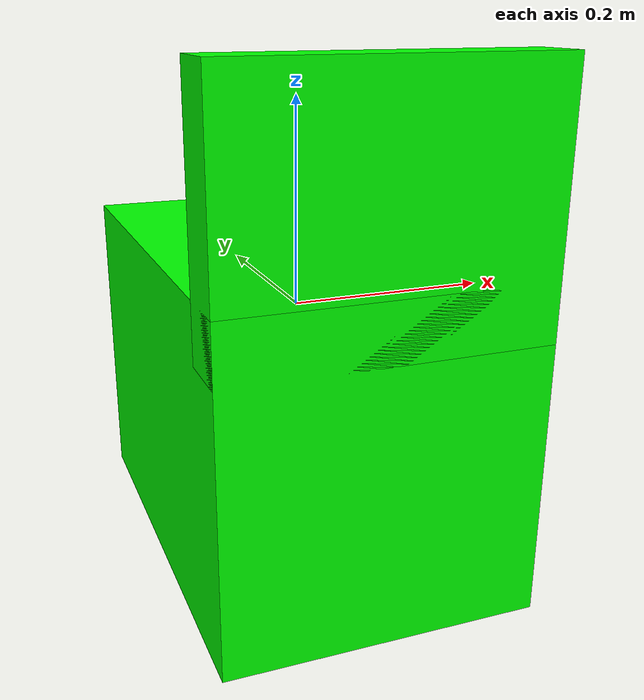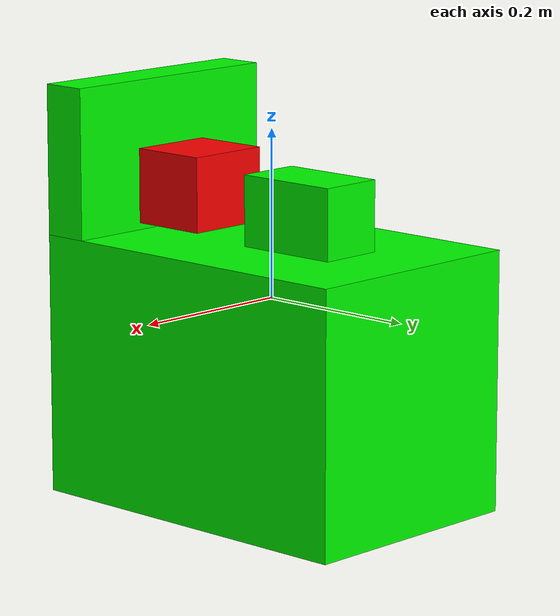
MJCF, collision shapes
<mujoco model="coffee_machine_6">
  <compiler autolimits="true" boundmass="0.01" angle="radian"/>
  <default>
    <default class="/">
      <default class="__VISUAL_MJT__">
        <geom contype="0" conaffinity="0" group="0"/>
      </default>
      <default class="__STRUCTURAL_MJT__">
        <geom contype="8" conaffinity="15" group="4" friction="0.90000000000000002 0.90000000000000002 0.001" solref="0.025000000000000001 1" solimp="0.998 0.998 0.001"/>
      </default>
      <default class="__DYNAMIC_MJT__">
        <geom contype="1" conaffinity="15" group="4" friction="0.90000000000000002 0.90000000000000002 0.001" solref="0.025000000000000001 1" solimp="0.998 0.998 0.001"/>
      </default>
    </default>
  </default>
  <asset>
    <material name="material_coffee_machine_backup_mat" class="/" specular="0.5" shininess="0.5" rgba="0.5 0.5 0.5 1"/>
    <material name="material_Coffee_Machine_Readout_Mat_Off" class="/" specular="0.5" shininess="0.5" rgba="0 0 0 1"/>
    <texture name="Coffee_Machine_Decal_Mat" type="2d" file="Coffee_Machine_Decal_AlbedoTransparency.png"/>
    <material name="material_Coffee_Machine_Decal_Mat" class="/" texture="Coffee_Machine_Decal_Mat" specular="0.5" shininess="0.5" rgba="1 1 1 1"/>
    <texture name="Coffee_Machine_Metal_Mat" type="2d" file="MetalBumpy_AlbedoTransparency.png"/>
    <material name="material_Coffee_Machine_Metal_Mat" class="/" texture="Coffee_Machine_Metal_Mat" specular="0.5" shininess="0.5" rgba="0.66176469999999998 0.66176469999999998 0.66176469999999998 1"/>
    <texture name="Coffee_Machine_Secondary1_Color_Mat" type="2d" file="BrushedIron_AlbedoTransparency.png"/>
    <material name="material_Coffee_Machine_Secondary1_Color_Mat" class="/" texture="Coffee_Machine_Secondary1_Color_Mat" specular="0.5" shininess="0.5" rgba="0.51470590000000005 0.51470590000000005 0.51470590000000005 1"/>
    <texture name="Coffee_Machine_Primary1_Color_Mat" type="2d" file="BumpyPlastic_Albedo.png"/>
    <material name="material_Coffee_Machine_Primary1_Color_Mat" class="/" texture="Coffee_Machine_Primary1_Color_Mat" specular="0.5" shininess="0.5" rgba="0.234375 0.34090910000000002 0.625 1"/>
    <mesh name="coffee_machine_6_coffee_machine_6_0" class="/" file="coffee_machine_6_coffee_machine_6/coffee_machine_6_coffee_machine_6_0.obj" scale="1 1 1"/>
    <mesh name="coffee_machine_6_coffee_machine_6_1" class="/" file="coffee_machine_6_coffee_machine_6/coffee_machine_6_coffee_machine_6_1.obj" scale="1 1 1"/>
    <mesh name="coffee_machine_6_coffee_machine_6_2" class="/" file="coffee_machine_6_coffee_machine_6/coffee_machine_6_coffee_machine_6_2.obj" scale="1 1 1"/>
    <mesh name="coffee_machine_6_coffee_machine_6_3" class="/" file="coffee_machine_6_coffee_machine_6/coffee_machine_6_coffee_machine_6_3.obj" scale="1 1 1"/>
    <mesh name="coffee_machine_6_coffee_machine_6_4" class="/" file="coffee_machine_6_coffee_machine_6/coffee_machine_6_coffee_machine_6_4.obj" scale="1 1 1"/>
    <mesh name="coffee_machine_6_coffee_machine_6_5" class="/" file="coffee_machine_6_coffee_machine_6/coffee_machine_6_coffee_machine_6_5.obj" scale="1 1 1"/>
  </asset>
  <worldbody>
    <body name="coffee_machine_6">
      <joint name="coffee_machine_6_free" class="/" type="free" pos="0 0 0" axis="0 0 1" stiffness="0" range="0 0" armature="0" damping="0.10000000000000001" frictionloss="0"/>
      <body name="coffee_machine_6_coffee_machine_6" pos="-0 -0.22112000000000001 -0.10588" quat="1 0 0 0">
        <geom name="coffee_machine_6_coffee_machine_6_0" class="__VISUAL_MJT__" type="mesh" material="material_coffee_machine_backup_mat" shellinertia="true" mesh="coffee_machine_6_coffee_machine_6_0"/>
        <geom name="coffee_machine_6_coffee_machine_6_1" class="__VISUAL_MJT__" type="mesh" material="material_Coffee_Machine_Readout_Mat_Off" shellinertia="false" mesh="coffee_machine_6_coffee_machine_6_1"/>
        <geom name="coffee_machine_6_coffee_machine_6_2" class="__VISUAL_MJT__" type="mesh" material="material_Coffee_Machine_Decal_Mat" shellinertia="false" mesh="coffee_machine_6_coffee_machine_6_2"/>
        <geom name="coffee_machine_6_coffee_machine_6_3" class="__VISUAL_MJT__" type="mesh" material="material_Coffee_Machine_Metal_Mat" shellinertia="false" mesh="coffee_machine_6_coffee_machine_6_3"/>
        <geom name="coffee_machine_6_coffee_machine_6_4" class="__VISUAL_MJT__" type="mesh" material="material_Coffee_Machine_Secondary1_Color_Mat" shellinertia="false" mesh="coffee_machine_6_coffee_machine_6_4"/>
        <geom name="coffee_machine_6_coffee_machine_6_5" class="__VISUAL_MJT__" type="mesh" material="material_Coffee_Machine_Primary1_Color_Mat" shellinertia="false" mesh="coffee_machine_6_coffee_machine_6_5"/>
        <site name="coffee_machine_6_Receptacle_0" class="/" type="box" rgba="1 0 0 1" size="0.052738387137651443 0.047727614641189575 0.044759426265954971" pos="-0 0.10362761467695236 0.22526605427265167" quat="1 0 0 0"/>
        <geom name="coffee_machine_6_PrimitiveCollider_0" class="__DYNAMIC_MJT__" type="box" size="0.14734183251857758 0.22112220525741577 0.15583813190460205" rgba="0 1 0 1" pos="-0 0.22112220525741577 0.01630103588104248" quat="1 0 0 0"/>
        <geom name="coffee_machine_6_PrimitiveCollider_1" class="__DYNAMIC_MJT__" type="box" size="0.14734183251857758 0.02791905403137207 0.11674204468727112" rgba="0 1 0 1" pos="-0 0.02791905403137207 0.23455598950386047" quat="1 0 0 0"/>
        <geom name="coffee_machine_6_PrimitiveCollider_2" class="__DYNAMIC_MJT__" type="box" size="0.039823155850172043 0.065117239952087402 0.049937009811401367" rgba="0 1 0 1" pos="-0 0.28071534633636475 0.20646750926971436" quat="1 0 0 0"/>
      </body>
    </body>
  </worldbody>
</mujoco>
